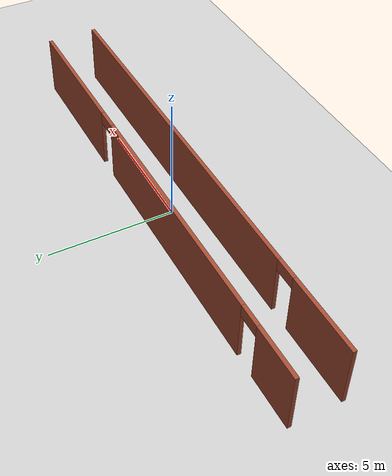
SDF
<sdf version="1.6">
 <world name="default">
  <light name="sun" type="directional">
   <pose>0 0 10 0 -0 0</pose>
   <diffuse>0.8 0.8 0.8 1</diffuse>
   <specular>0.2 0.2 0.2 1</specular>
   <attenuation>
    <range>1000</range>
    <constant>0.9</constant>
    <linear>0.01</linear>
    <quadratic>0.001</quadratic>
   </attenuation>
   <direction>-0.5 0.1 -0.9</direction>
  </light>
  <model name="ground_plane">
   <static>1</static>
   <link name="link">
    <collision name="collision">
     <geometry><plane><normal>0 0 1</normal><size>100 100</size></plane></geometry>
     <surface>
      <contact><collide_bitmask>65535</collide_bitmask></contact>
      <friction><ode><mu>100</mu><mu2>50</mu2></ode></friction>
     </surface>
    </collision>
    <visual name="visual">
     <cast_shadows>0</cast_shadows>
     <geometry><plane><normal>0 0 1</normal><size>100 100</size></plane></geometry>
     <material>
      <script><uri>file://media/materials/scripts/gazebo.material</uri><name>Gazebo/Grey</name></script>
     </material>
    </visual>
   </link>
  </model>
  <gravity>0 0 -9.8</gravity>
  <magnetic_field>6e-06 2.3e-05 -4.2e-05</magnetic_field>
  <atmosphere type="adiabatic"/>
  <physics name="default_physics" default="0" type="ode">
   <max_step_size>0.001</max_step_size>
   <real_time_factor>1</real_time_factor>
   <real_time_update_rate>1000</real_time_update_rate>
  </physics>
  <scene><ambient>0.4 0.4 0.4 1</ambient><background>0.7 0.7 0.7 1</background><shadows>1</shadows></scene>
  <spherical_coordinates>
   <surface_model>EARTH_WGS84</surface_model>
   <latitude_deg>0</latitude_deg>
   <longitude_deg>0</longitude_deg>
   <elevation>0</elevation>
   <heading_deg>0</heading_deg>
  </spherical_coordinates>
  <model name="niesym">
   <pose>-0.123197 0.035749 0 0 -0 0</pose>
   <link name="Wall_27">
    <pose>0.016506 -0.99808 0 0 -0 3.14159</pose>
    <visual name="Wall_27_Visual_0">
     <pose>-2.04374 0 1.25 0 -0 0</pose>
     <geometry><box><size>15.4125 0.15 2.5</size></box></geometry>
     <material>
      <script><uri>file://media/materials/scripts/gazebo.material</uri><name>Gazebo/Bricks</name></script>
      <ambient>1 1 1 1</ambient>
     </material>
     <meta><layer>0</layer></meta>
    </visual>
    <collision name="Wall_27_Collision_0">
     <geometry><box><size>15.4125 0.15 2.5</size></box></geometry>
     <pose>-2.04374 0 1.25 0 -0 0</pose>
    </collision>
    <visual name="Wall_27_Visual_1">
     <pose>8.15626 0 1.25 0 -0 0</pose>
     <geometry><box><size>3.18749 0.15 2.5</size></box></geometry>
     <material>
      <script><uri>file://media/materials/scripts/gazebo.material</uri><name>Gazebo/Bricks</name></script>
      <ambient>1 1 1 1</ambient>
     </material>
     <meta><layer>0</layer></meta>
    </visual>
    <collision name="Wall_27_Collision_1">
     <geometry><box><size>3.18749 0.15 2.5</size></box></geometry>
     <pose>8.15626 0 1.25 0 -0 0</pose>
    </collision>
    <visual name="Wall_27_Visual_2">
     <pose>6.11251 0 2.25 0 -0 0</pose>
     <geometry><box><size>0.9 0.15 0.5</size></box></geometry>
     <material>
      <script><uri>file://media/materials/scripts/gazebo.material</uri><name>Gazebo/Bricks</name></script>
      <ambient>1 1 1 1</ambient>
     </material>
     <meta><layer>0</layer></meta>
    </visual>
    <collision name="Wall_27_Collision_2">
     <geometry><box><size>0.9 0.15 0.5</size></box></geometry>
     <pose>6.11251 0 2.25 0 -0 0</pose>
    </collision>
   </link>
   <link name="Wall_29">
    <pose>-0.016506 0.99808 0 0 -0 3.14159</pose>
    <visual name="Wall_29_Visual_0">
     <pose>-6.88751 0 1.25 0 -0 0</pose>
     <geometry><box><size>5.72499 0.15 2.5</size></box></geometry>
     <material>
      <script><uri>file://media/materials/scripts/gazebo.material</uri><name>Gazebo/Bricks</name></script>
      <ambient>1 1 1 1</ambient>
     </material>
     <meta><layer>0</layer></meta>
    </visual>
    <collision name="Wall_29_Collision_0">
     <geometry><box><size>5.72499 0.15 2.5</size></box></geometry>
     <pose>-6.88751 0 1.25 0 -0 0</pose>
    </collision>
    <visual name="Wall_29_Visual_1">
     <pose>1.81542 0 1.25 0 -0 0</pose>
     <geometry><box><size>9.88087 0.15 2.5</size></box></geometry>
     <material>
      <script><uri>file://media/materials/scripts/gazebo.material</uri><name>Gazebo/Bricks</name></script>
      <ambient>1 1 1 1</ambient>
     </material>
     <meta><layer>0</layer></meta>
    </visual>
    <collision name="Wall_29_Collision_1">
     <geometry><box><size>9.88087 0.15 2.5</size></box></geometry>
     <pose>1.81542 0 1.25 0 -0 0</pose>
    </collision>
    <visual name="Wall_29_Visual_2">
     <pose>8.70293 0 1.25 0 -0 0</pose>
     <geometry><box><size>2.09414 0.15 2.5</size></box></geometry>
     <material>
      <script><uri>file://media/materials/scripts/gazebo.material</uri><name>Gazebo/Bricks</name></script>
      <ambient>1 1 1 1</ambient>
     </material>
     <meta><layer>0</layer></meta>
    </visual>
    <collision name="Wall_29_Collision_2">
     <geometry><box><size>2.09414 0.15 2.5</size></box></geometry>
     <pose>8.70293 0 1.25 0 -0 0</pose>
    </collision>
    <visual name="Wall_29_Visual_3">
     <pose>-3.57501 0 2.25 0 -0 0</pose>
     <geometry><box><size>0.9 0.15 0.5</size></box></geometry>
     <material>
      <script><uri>file://media/materials/scripts/gazebo.material</uri><name>Gazebo/Bricks</name></script>
      <ambient>1 1 1 1</ambient>
     </material>
     <meta><layer>0</layer></meta>
    </visual>
    <collision name="Wall_29_Collision_3">
     <geometry><box><size>0.9 0.15 0.5</size></box></geometry>
     <pose>-3.57501 0 2.25 0 -0 0</pose>
    </collision>
    <visual name="Wall_29_Visual_4">
     <pose>7.20586 0 2.25 0 -0 0</pose>
     <geometry><box><size>0.9 0.15 0.5</size></box></geometry>
     <material>
      <script><uri>file://media/materials/scripts/gazebo.material</uri><name>Gazebo/Bricks</name></script>
      <ambient>1 1 1 1</ambient>
     </material>
     <meta><layer>0</layer></meta>
    </visual>
    <collision name="Wall_29_Collision_4">
     <geometry><box><size>0.9 0.15 0.5</size></box></geometry>
     <pose>7.20586 0 2.25 0 -0 0</pose>
    </collision>
   </link>
   <static>1</static>
  </model>
 </world>
</sdf>
